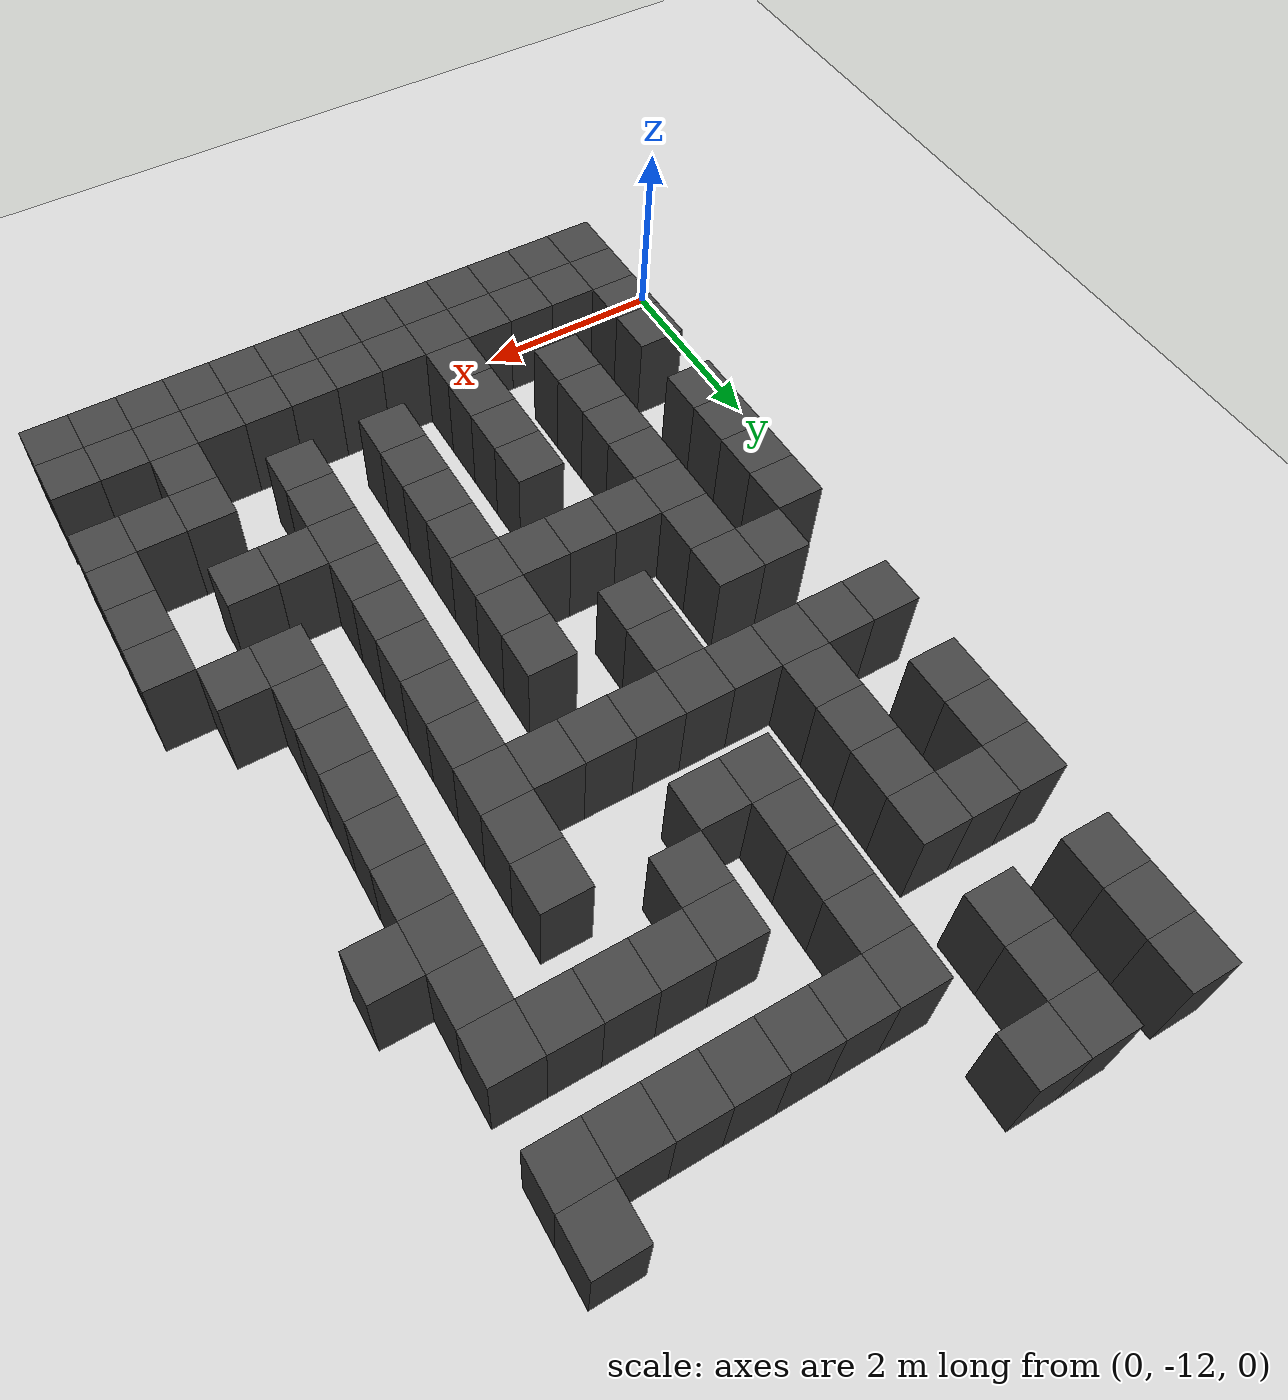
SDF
<sdf version="1.7">
 <world name="map_17663">
  <model name="ground_plane">
   <static>true</static>
   <link name="link">
    <collision name="collision">
     <geometry><plane><normal>0 0 1</normal><size>200 200</size></plane></geometry>
    </collision>
    <visual name="visual">
     <geometry><plane><normal>0 0 1</normal><size>200 200</size></plane></geometry>
     <material><ambient>0.8 0.8 0.8 1</ambient><diffuse>0.8 0.8 0.8 1</diffuse></material>
    </visual>
   </link>
  </model>
  <model name="maze_environment">
   <static>true</static>
   <link name="wall_758">
    <pose>0.750 -2.750 0.500 0 0 0</pose>
    <collision name="col"><geometry><box><size>0.5 0.5 1.0</size></box></geometry></collision>
    <visual name="vis">
     <geometry><box><size>0.5 0.5 1.0</size></box></geometry>
     <material><ambient>0.15 0.15 0.15 1</ambient><diffuse>0.25 0.25 0.25 1</diffuse></material>
    </visual>
   </link>
   <link name="wall_759">
    <pose>1.750 -2.750 0.500 0 0 0</pose>
    <collision name="col"><geometry><box><size>0.5 0.5 1.0</size></box></geometry></collision>
    <visual name="vis">
     <geometry><box><size>0.5 0.5 1.0</size></box></geometry>
     <material><ambient>0.15 0.15 0.15 1</ambient><diffuse>0.25 0.25 0.25 1</diffuse></material>
    </visual>
   </link>
   <link name="wall_760">
    <pose>2.250 -2.750 0.500 0 0 0</pose>
    <collision name="col"><geometry><box><size>0.5 0.5 1.0</size></box></geometry></collision>
    <visual name="vis">
     <geometry><box><size>0.5 0.5 1.0</size></box></geometry>
     <material><ambient>0.15 0.15 0.15 1</ambient><diffuse>0.25 0.25 0.25 1</diffuse></material>
    </visual>
   </link>
   <link name="wall_783">
    <pose>0.750 -3.250 0.500 0 0 0</pose>
    <collision name="col"><geometry><box><size>0.5 0.5 1.0</size></box></geometry></collision>
    <visual name="vis">
     <geometry><box><size>0.5 0.5 1.0</size></box></geometry>
     <material><ambient>0.15 0.15 0.15 1</ambient><diffuse>0.25 0.25 0.25 1</diffuse></material>
    </visual>
   </link>
   <link name="wall_784">
    <pose>1.750 -3.250 0.500 0 0 0</pose>
    <collision name="col"><geometry><box><size>0.5 0.5 1.0</size></box></geometry></collision>
    <visual name="vis">
     <geometry><box><size>0.5 0.5 1.0</size></box></geometry>
     <material><ambient>0.15 0.15 0.15 1</ambient><diffuse>0.25 0.25 0.25 1</diffuse></material>
    </visual>
   </link>
   <link name="wall_785">
    <pose>5.750 -3.250 0.500 0 0 0</pose>
    <collision name="col"><geometry><box><size>0.5 0.5 1.0</size></box></geometry></collision>
    <visual name="vis">
     <geometry><box><size>0.5 0.5 1.0</size></box></geometry>
     <material><ambient>0.15 0.15 0.15 1</ambient><diffuse>0.25 0.25 0.25 1</diffuse></material>
    </visual>
   </link>
   <link name="wall_807">
    <pose>0.750 -3.750 0.500 0 0 0</pose>
    <collision name="col"><geometry><box><size>0.5 0.5 1.0</size></box></geometry></collision>
    <visual name="vis">
     <geometry><box><size>0.5 0.5 1.0</size></box></geometry>
     <material><ambient>0.15 0.15 0.15 1</ambient><diffuse>0.25 0.25 0.25 1</diffuse></material>
    </visual>
   </link>
   <link name="wall_808">
    <pose>1.750 -3.750 0.500 0 0 0</pose>
    <collision name="col"><geometry><box><size>0.5 0.5 1.0</size></box></geometry></collision>
    <visual name="vis">
     <geometry><box><size>0.5 0.5 1.0</size></box></geometry>
     <material><ambient>0.15 0.15 0.15 1</ambient><diffuse>0.25 0.25 0.25 1</diffuse></material>
    </visual>
   </link>
   <link name="wall_809">
    <pose>2.750 -3.750 0.500 0 0 0</pose>
    <collision name="col"><geometry><box><size>0.5 0.5 1.0</size></box></geometry></collision>
    <visual name="vis">
     <geometry><box><size>0.5 0.5 1.0</size></box></geometry>
     <material><ambient>0.15 0.15 0.15 1</ambient><diffuse>0.25 0.25 0.25 1</diffuse></material>
    </visual>
   </link>
   <link name="wall_810">
    <pose>3.250 -3.750 0.500 0 0 0</pose>
    <collision name="col"><geometry><box><size>0.5 0.5 1.0</size></box></geometry></collision>
    <visual name="vis">
     <geometry><box><size>0.5 0.5 1.0</size></box></geometry>
     <material><ambient>0.15 0.15 0.15 1</ambient><diffuse>0.25 0.25 0.25 1</diffuse></material>
    </visual>
   </link>
   <link name="wall_811">
    <pose>3.750 -3.750 0.500 0 0 0</pose>
    <collision name="col"><geometry><box><size>0.5 0.5 1.0</size></box></geometry></collision>
    <visual name="vis">
     <geometry><box><size>0.5 0.5 1.0</size></box></geometry>
     <material><ambient>0.15 0.15 0.15 1</ambient><diffuse>0.25 0.25 0.25 1</diffuse></material>
    </visual>
   </link>
   <link name="wall_812">
    <pose>4.250 -3.750 0.500 0 0 0</pose>
    <collision name="col"><geometry><box><size>0.5 0.5 1.0</size></box></geometry></collision>
    <visual name="vis">
     <geometry><box><size>0.5 0.5 1.0</size></box></geometry>
     <material><ambient>0.15 0.15 0.15 1</ambient><diffuse>0.25 0.25 0.25 1</diffuse></material>
    </visual>
   </link>
   <link name="wall_813">
    <pose>4.750 -3.750 0.500 0 0 0</pose>
    <collision name="col"><geometry><box><size>0.5 0.5 1.0</size></box></geometry></collision>
    <visual name="vis">
     <geometry><box><size>0.5 0.5 1.0</size></box></geometry>
     <material><ambient>0.15 0.15 0.15 1</ambient><diffuse>0.25 0.25 0.25 1</diffuse></material>
    </visual>
   </link>
   <link name="wall_814">
    <pose>5.250 -3.750 0.500 0 0 0</pose>
    <collision name="col"><geometry><box><size>0.5 0.5 1.0</size></box></geometry></collision>
    <visual name="vis">
     <geometry><box><size>0.5 0.5 1.0</size></box></geometry>
     <material><ambient>0.15 0.15 0.15 1</ambient><diffuse>0.25 0.25 0.25 1</diffuse></material>
    </visual>
   </link>
   <link name="wall_815">
    <pose>5.750 -3.750 0.500 0 0 0</pose>
    <collision name="col"><geometry><box><size>0.5 0.5 1.0</size></box></geometry></collision>
    <visual name="vis">
     <geometry><box><size>0.5 0.5 1.0</size></box></geometry>
     <material><ambient>0.15 0.15 0.15 1</ambient><diffuse>0.25 0.25 0.25 1</diffuse></material>
    </visual>
   </link>
   <link name="wall_833">
    <pose>2.750 -4.250 0.500 0 0 0</pose>
    <collision name="col"><geometry><box><size>0.5 0.5 1.0</size></box></geometry></collision>
    <visual name="vis">
     <geometry><box><size>0.5 0.5 1.0</size></box></geometry>
     <material><ambient>0.15 0.15 0.15 1</ambient><diffuse>0.25 0.25 0.25 1</diffuse></material>
    </visual>
   </link>
   <link name="wall_855">
    <pose>0.750 -4.750 0.500 0 0 0</pose>
    <collision name="col"><geometry><box><size>0.5 0.5 1.0</size></box></geometry></collision>
    <visual name="vis">
     <geometry><box><size>0.5 0.5 1.0</size></box></geometry>
     <material><ambient>0.15 0.15 0.15 1</ambient><diffuse>0.25 0.25 0.25 1</diffuse></material>
    </visual>
   </link>
   <link name="wall_856">
    <pose>1.250 -4.750 0.500 0 0 0</pose>
    <collision name="col"><geometry><box><size>0.5 0.5 1.0</size></box></geometry></collision>
    <visual name="vis">
     <geometry><box><size>0.5 0.5 1.0</size></box></geometry>
     <material><ambient>0.15 0.15 0.15 1</ambient><diffuse>0.25 0.25 0.25 1</diffuse></material>
    </visual>
   </link>
   <link name="wall_857">
    <pose>1.750 -4.750 0.500 0 0 0</pose>
    <collision name="col"><geometry><box><size>0.5 0.5 1.0</size></box></geometry></collision>
    <visual name="vis">
     <geometry><box><size>0.5 0.5 1.0</size></box></geometry>
     <material><ambient>0.15 0.15 0.15 1</ambient><diffuse>0.25 0.25 0.25 1</diffuse></material>
    </visual>
   </link>
   <link name="wall_858">
    <pose>2.750 -4.750 0.500 0 0 0</pose>
    <collision name="col"><geometry><box><size>0.5 0.5 1.0</size></box></geometry></collision>
    <visual name="vis">
     <geometry><box><size>0.5 0.5 1.0</size></box></geometry>
     <material><ambient>0.15 0.15 0.15 1</ambient><diffuse>0.25 0.25 0.25 1</diffuse></material>
    </visual>
   </link>
   <link name="wall_859">
    <pose>3.750 -4.750 0.500 0 0 0</pose>
    <collision name="col"><geometry><box><size>0.5 0.5 1.0</size></box></geometry></collision>
    <visual name="vis">
     <geometry><box><size>0.5 0.5 1.0</size></box></geometry>
     <material><ambient>0.15 0.15 0.15 1</ambient><diffuse>0.25 0.25 0.25 1</diffuse></material>
    </visual>
   </link>
   <link name="wall_860">
    <pose>4.250 -4.750 0.500 0 0 0</pose>
    <collision name="col"><geometry><box><size>0.5 0.5 1.0</size></box></geometry></collision>
    <visual name="vis">
     <geometry><box><size>0.5 0.5 1.0</size></box></geometry>
     <material><ambient>0.15 0.15 0.15 1</ambient><diffuse>0.25 0.25 0.25 1</diffuse></material>
    </visual>
   </link>
   <link name="wall_861">
    <pose>4.750 -4.750 0.500 0 0 0</pose>
    <collision name="col"><geometry><box><size>0.5 0.5 1.0</size></box></geometry></collision>
    <visual name="vis">
     <geometry><box><size>0.5 0.5 1.0</size></box></geometry>
     <material><ambient>0.15 0.15 0.15 1</ambient><diffuse>0.25 0.25 0.25 1</diffuse></material>
    </visual>
   </link>
   <link name="wall_862">
    <pose>5.250 -4.750 0.500 0 0 0</pose>
    <collision name="col"><geometry><box><size>0.5 0.5 1.0</size></box></geometry></collision>
    <visual name="vis">
     <geometry><box><size>0.5 0.5 1.0</size></box></geometry>
     <material><ambient>0.15 0.15 0.15 1</ambient><diffuse>0.25 0.25 0.25 1</diffuse></material>
    </visual>
   </link>
   <link name="wall_863">
    <pose>5.750 -4.750 0.500 0 0 0</pose>
    <collision name="col"><geometry><box><size>0.5 0.5 1.0</size></box></geometry></collision>
    <visual name="vis">
     <geometry><box><size>0.5 0.5 1.0</size></box></geometry>
     <material><ambient>0.15 0.15 0.15 1</ambient><diffuse>0.25 0.25 0.25 1</diffuse></material>
    </visual>
   </link>
   <link name="wall_881">
    <pose>0.750 -5.250 0.500 0 0 0</pose>
    <collision name="col"><geometry><box><size>0.5 0.5 1.0</size></box></geometry></collision>
    <visual name="vis">
     <geometry><box><size>0.5 0.5 1.0</size></box></geometry>
     <material><ambient>0.15 0.15 0.15 1</ambient><diffuse>0.25 0.25 0.25 1</diffuse></material>
    </visual>
   </link>
   <link name="wall_882">
    <pose>1.750 -5.250 0.500 0 0 0</pose>
    <collision name="col"><geometry><box><size>0.5 0.5 1.0</size></box></geometry></collision>
    <visual name="vis">
     <geometry><box><size>0.5 0.5 1.0</size></box></geometry>
     <material><ambient>0.15 0.15 0.15 1</ambient><diffuse>0.25 0.25 0.25 1</diffuse></material>
    </visual>
   </link>
   <link name="wall_883">
    <pose>2.750 -5.250 0.500 0 0 0</pose>
    <collision name="col"><geometry><box><size>0.5 0.5 1.0</size></box></geometry></collision>
    <visual name="vis">
     <geometry><box><size>0.5 0.5 1.0</size></box></geometry>
     <material><ambient>0.15 0.15 0.15 1</ambient><diffuse>0.25 0.25 0.25 1</diffuse></material>
    </visual>
   </link>
   <link name="wall_884">
    <pose>3.750 -5.250 0.500 0 0 0</pose>
    <collision name="col"><geometry><box><size>0.5 0.5 1.0</size></box></geometry></collision>
    <visual name="vis">
     <geometry><box><size>0.5 0.5 1.0</size></box></geometry>
     <material><ambient>0.15 0.15 0.15 1</ambient><diffuse>0.25 0.25 0.25 1</diffuse></material>
    </visual>
   </link>
   <link name="wall_885">
    <pose>5.750 -5.250 0.500 0 0 0</pose>
    <collision name="col"><geometry><box><size>0.5 0.5 1.0</size></box></geometry></collision>
    <visual name="vis">
     <geometry><box><size>0.5 0.5 1.0</size></box></geometry>
     <material><ambient>0.15 0.15 0.15 1</ambient><diffuse>0.25 0.25 0.25 1</diffuse></material>
    </visual>
   </link>
   <link name="wall_903">
    <pose>0.750 -5.750 0.500 0 0 0</pose>
    <collision name="col"><geometry><box><size>0.5 0.5 1.0</size></box></geometry></collision>
    <visual name="vis">
     <geometry><box><size>0.5 0.5 1.0</size></box></geometry>
     <material><ambient>0.15 0.15 0.15 1</ambient><diffuse>0.25 0.25 0.25 1</diffuse></material>
    </visual>
   </link>
   <link name="wall_904">
    <pose>1.750 -5.750 0.500 0 0 0</pose>
    <collision name="col"><geometry><box><size>0.5 0.5 1.0</size></box></geometry></collision>
    <visual name="vis">
     <geometry><box><size>0.5 0.5 1.0</size></box></geometry>
     <material><ambient>0.15 0.15 0.15 1</ambient><diffuse>0.25 0.25 0.25 1</diffuse></material>
    </visual>
   </link>
   <link name="wall_905">
    <pose>2.750 -5.750 0.500 0 0 0</pose>
    <collision name="col"><geometry><box><size>0.5 0.5 1.0</size></box></geometry></collision>
    <visual name="vis">
     <geometry><box><size>0.5 0.5 1.0</size></box></geometry>
     <material><ambient>0.15 0.15 0.15 1</ambient><diffuse>0.25 0.25 0.25 1</diffuse></material>
    </visual>
   </link>
   <link name="wall_906">
    <pose>3.250 -5.750 0.500 0 0 0</pose>
    <collision name="col"><geometry><box><size>0.5 0.5 1.0</size></box></geometry></collision>
    <visual name="vis">
     <geometry><box><size>0.5 0.5 1.0</size></box></geometry>
     <material><ambient>0.15 0.15 0.15 1</ambient><diffuse>0.25 0.25 0.25 1</diffuse></material>
    </visual>
   </link>
   <link name="wall_907">
    <pose>4.750 -5.750 0.500 0 0 0</pose>
    <collision name="col"><geometry><box><size>0.5 0.5 1.0</size></box></geometry></collision>
    <visual name="vis">
     <geometry><box><size>0.5 0.5 1.0</size></box></geometry>
     <material><ambient>0.15 0.15 0.15 1</ambient><diffuse>0.25 0.25 0.25 1</diffuse></material>
    </visual>
   </link>
   <link name="wall_908">
    <pose>5.750 -5.750 0.500 0 0 0</pose>
    <collision name="col"><geometry><box><size>0.5 0.5 1.0</size></box></geometry></collision>
    <visual name="vis">
     <geometry><box><size>0.5 0.5 1.0</size></box></geometry>
     <material><ambient>0.15 0.15 0.15 1</ambient><diffuse>0.25 0.25 0.25 1</diffuse></material>
    </visual>
   </link>
   <link name="wall_909">
    <pose>6.250 -5.750 0.500 0 0 0</pose>
    <collision name="col"><geometry><box><size>0.5 0.5 1.0</size></box></geometry></collision>
    <visual name="vis">
     <geometry><box><size>0.5 0.5 1.0</size></box></geometry>
     <material><ambient>0.15 0.15 0.15 1</ambient><diffuse>0.25 0.25 0.25 1</diffuse></material>
    </visual>
   </link>
   <link name="wall_928">
    <pose>1.750 -6.250 0.500 0 0 0</pose>
    <collision name="col"><geometry><box><size>0.5 0.5 1.0</size></box></geometry></collision>
    <visual name="vis">
     <geometry><box><size>0.5 0.5 1.0</size></box></geometry>
     <material><ambient>0.15 0.15 0.15 1</ambient><diffuse>0.25 0.25 0.25 1</diffuse></material>
    </visual>
   </link>
   <link name="wall_929">
    <pose>4.750 -6.250 0.500 0 0 0</pose>
    <collision name="col"><geometry><box><size>0.5 0.5 1.0</size></box></geometry></collision>
    <visual name="vis">
     <geometry><box><size>0.5 0.5 1.0</size></box></geometry>
     <material><ambient>0.15 0.15 0.15 1</ambient><diffuse>0.25 0.25 0.25 1</diffuse></material>
    </visual>
   </link>
   <link name="wall_930">
    <pose>5.750 -6.250 0.500 0 0 0</pose>
    <collision name="col"><geometry><box><size>0.5 0.5 1.0</size></box></geometry></collision>
    <visual name="vis">
     <geometry><box><size>0.5 0.5 1.0</size></box></geometry>
     <material><ambient>0.15 0.15 0.15 1</ambient><diffuse>0.25 0.25 0.25 1</diffuse></material>
    </visual>
   </link>
   <link name="wall_954">
    <pose>0.750 -6.750 0.500 0 0 0</pose>
    <collision name="col"><geometry><box><size>0.5 0.5 1.0</size></box></geometry></collision>
    <visual name="vis">
     <geometry><box><size>0.5 0.5 1.0</size></box></geometry>
     <material><ambient>0.15 0.15 0.15 1</ambient><diffuse>0.25 0.25 0.25 1</diffuse></material>
    </visual>
   </link>
   <link name="wall_955">
    <pose>1.250 -6.750 0.500 0 0 0</pose>
    <collision name="col"><geometry><box><size>0.5 0.5 1.0</size></box></geometry></collision>
    <visual name="vis">
     <geometry><box><size>0.5 0.5 1.0</size></box></geometry>
     <material><ambient>0.15 0.15 0.15 1</ambient><diffuse>0.25 0.25 0.25 1</diffuse></material>
    </visual>
   </link>
   <link name="wall_956">
    <pose>1.750 -6.750 0.500 0 0 0</pose>
    <collision name="col"><geometry><box><size>0.5 0.5 1.0</size></box></geometry></collision>
    <visual name="vis">
     <geometry><box><size>0.5 0.5 1.0</size></box></geometry>
     <material><ambient>0.15 0.15 0.15 1</ambient><diffuse>0.25 0.25 0.25 1</diffuse></material>
    </visual>
   </link>
   <link name="wall_957">
    <pose>2.250 -6.750 0.500 0 0 0</pose>
    <collision name="col"><geometry><box><size>0.5 0.5 1.0</size></box></geometry></collision>
    <visual name="vis">
     <geometry><box><size>0.5 0.5 1.0</size></box></geometry>
     <material><ambient>0.15 0.15 0.15 1</ambient><diffuse>0.25 0.25 0.25 1</diffuse></material>
    </visual>
   </link>
   <link name="wall_958">
    <pose>2.750 -6.750 0.500 0 0 0</pose>
    <collision name="col"><geometry><box><size>0.5 0.5 1.0</size></box></geometry></collision>
    <visual name="vis">
     <geometry><box><size>0.5 0.5 1.0</size></box></geometry>
     <material><ambient>0.15 0.15 0.15 1</ambient><diffuse>0.25 0.25 0.25 1</diffuse></material>
    </visual>
   </link>
   <link name="wall_959">
    <pose>3.250 -6.750 0.500 0 0 0</pose>
    <collision name="col"><geometry><box><size>0.5 0.5 1.0</size></box></geometry></collision>
    <visual name="vis">
     <geometry><box><size>0.5 0.5 1.0</size></box></geometry>
     <material><ambient>0.15 0.15 0.15 1</ambient><diffuse>0.25 0.25 0.25 1</diffuse></material>
    </visual>
   </link>
   <link name="wall_960">
    <pose>3.750 -6.750 0.500 0 0 0</pose>
    <collision name="col"><geometry><box><size>0.5 0.5 1.0</size></box></geometry></collision>
    <visual name="vis">
     <geometry><box><size>0.5 0.5 1.0</size></box></geometry>
     <material><ambient>0.15 0.15 0.15 1</ambient><diffuse>0.25 0.25 0.25 1</diffuse></material>
    </visual>
   </link>
   <link name="wall_961">
    <pose>4.250 -6.750 0.500 0 0 0</pose>
    <collision name="col"><geometry><box><size>0.5 0.5 1.0</size></box></geometry></collision>
    <visual name="vis">
     <geometry><box><size>0.5 0.5 1.0</size></box></geometry>
     <material><ambient>0.15 0.15 0.15 1</ambient><diffuse>0.25 0.25 0.25 1</diffuse></material>
    </visual>
   </link>
   <link name="wall_962">
    <pose>4.750 -6.750 0.500 0 0 0</pose>
    <collision name="col"><geometry><box><size>0.5 0.5 1.0</size></box></geometry></collision>
    <visual name="vis">
     <geometry><box><size>0.5 0.5 1.0</size></box></geometry>
     <material><ambient>0.15 0.15 0.15 1</ambient><diffuse>0.25 0.25 0.25 1</diffuse></material>
    </visual>
   </link>
   <link name="wall_963">
    <pose>5.750 -6.750 0.500 0 0 0</pose>
    <collision name="col"><geometry><box><size>0.5 0.5 1.0</size></box></geometry></collision>
    <visual name="vis">
     <geometry><box><size>0.5 0.5 1.0</size></box></geometry>
     <material><ambient>0.15 0.15 0.15 1</ambient><diffuse>0.25 0.25 0.25 1</diffuse></material>
    </visual>
   </link>
   <link name="wall_980">
    <pose>2.750 -7.250 0.500 0 0 0</pose>
    <collision name="col"><geometry><box><size>0.5 0.5 1.0</size></box></geometry></collision>
    <visual name="vis">
     <geometry><box><size>0.5 0.5 1.0</size></box></geometry>
     <material><ambient>0.15 0.15 0.15 1</ambient><diffuse>0.25 0.25 0.25 1</diffuse></material>
    </visual>
   </link>
   <link name="wall_981">
    <pose>4.750 -7.250 0.500 0 0 0</pose>
    <collision name="col"><geometry><box><size>0.5 0.5 1.0</size></box></geometry></collision>
    <visual name="vis">
     <geometry><box><size>0.5 0.5 1.0</size></box></geometry>
     <material><ambient>0.15 0.15 0.15 1</ambient><diffuse>0.25 0.25 0.25 1</diffuse></material>
    </visual>
   </link>
   <link name="wall_982">
    <pose>5.750 -7.250 0.500 0 0 0</pose>
    <collision name="col"><geometry><box><size>0.5 0.5 1.0</size></box></geometry></collision>
    <visual name="vis">
     <geometry><box><size>0.5 0.5 1.0</size></box></geometry>
     <material><ambient>0.15 0.15 0.15 1</ambient><diffuse>0.25 0.25 0.25 1</diffuse></material>
    </visual>
   </link>
   <link name="wall_1003">
    <pose>1.250 -7.750 0.500 0 0 0</pose>
    <collision name="col"><geometry><box><size>0.5 0.5 1.0</size></box></geometry></collision>
    <visual name="vis">
     <geometry><box><size>0.5 0.5 1.0</size></box></geometry>
     <material><ambient>0.15 0.15 0.15 1</ambient><diffuse>0.25 0.25 0.25 1</diffuse></material>
    </visual>
   </link>
   <link name="wall_1004">
    <pose>1.750 -7.750 0.500 0 0 0</pose>
    <collision name="col"><geometry><box><size>0.5 0.5 1.0</size></box></geometry></collision>
    <visual name="vis">
     <geometry><box><size>0.5 0.5 1.0</size></box></geometry>
     <material><ambient>0.15 0.15 0.15 1</ambient><diffuse>0.25 0.25 0.25 1</diffuse></material>
    </visual>
   </link>
   <link name="wall_1005">
    <pose>2.750 -7.750 0.500 0 0 0</pose>
    <collision name="col"><geometry><box><size>0.5 0.5 1.0</size></box></geometry></collision>
    <visual name="vis">
     <geometry><box><size>0.5 0.5 1.0</size></box></geometry>
     <material><ambient>0.15 0.15 0.15 1</ambient><diffuse>0.25 0.25 0.25 1</diffuse></material>
    </visual>
   </link>
   <link name="wall_1006">
    <pose>3.750 -7.750 0.500 0 0 0</pose>
    <collision name="col"><geometry><box><size>0.5 0.5 1.0</size></box></geometry></collision>
    <visual name="vis">
     <geometry><box><size>0.5 0.5 1.0</size></box></geometry>
     <material><ambient>0.15 0.15 0.15 1</ambient><diffuse>0.25 0.25 0.25 1</diffuse></material>
    </visual>
   </link>
   <link name="wall_1007">
    <pose>4.750 -7.750 0.500 0 0 0</pose>
    <collision name="col"><geometry><box><size>0.5 0.5 1.0</size></box></geometry></collision>
    <visual name="vis">
     <geometry><box><size>0.5 0.5 1.0</size></box></geometry>
     <material><ambient>0.15 0.15 0.15 1</ambient><diffuse>0.25 0.25 0.25 1</diffuse></material>
    </visual>
   </link>
   <link name="wall_1008">
    <pose>5.750 -7.750 0.500 0 0 0</pose>
    <collision name="col"><geometry><box><size>0.5 0.5 1.0</size></box></geometry></collision>
    <visual name="vis">
     <geometry><box><size>0.5 0.5 1.0</size></box></geometry>
     <material><ambient>0.15 0.15 0.15 1</ambient><diffuse>0.25 0.25 0.25 1</diffuse></material>
    </visual>
   </link>
   <link name="wall_1026">
    <pose>0.750 -8.250 0.500 0 0 0</pose>
    <collision name="col"><geometry><box><size>0.5 0.5 1.0</size></box></geometry></collision>
    <visual name="vis">
     <geometry><box><size>0.5 0.5 1.0</size></box></geometry>
     <material><ambient>0.15 0.15 0.15 1</ambient><diffuse>0.25 0.25 0.25 1</diffuse></material>
    </visual>
   </link>
   <link name="wall_1027">
    <pose>1.750 -8.250 0.500 0 0 0</pose>
    <collision name="col"><geometry><box><size>0.5 0.5 1.0</size></box></geometry></collision>
    <visual name="vis">
     <geometry><box><size>0.5 0.5 1.0</size></box></geometry>
     <material><ambient>0.15 0.15 0.15 1</ambient><diffuse>0.25 0.25 0.25 1</diffuse></material>
    </visual>
   </link>
   <link name="wall_1028">
    <pose>3.750 -8.250 0.500 0 0 0</pose>
    <collision name="col"><geometry><box><size>0.5 0.5 1.0</size></box></geometry></collision>
    <visual name="vis">
     <geometry><box><size>0.5 0.5 1.0</size></box></geometry>
     <material><ambient>0.15 0.15 0.15 1</ambient><diffuse>0.25 0.25 0.25 1</diffuse></material>
    </visual>
   </link>
   <link name="wall_1029">
    <pose>4.750 -8.250 0.500 0 0 0</pose>
    <collision name="col"><geometry><box><size>0.5 0.5 1.0</size></box></geometry></collision>
    <visual name="vis">
     <geometry><box><size>0.5 0.5 1.0</size></box></geometry>
     <material><ambient>0.15 0.15 0.15 1</ambient><diffuse>0.25 0.25 0.25 1</diffuse></material>
    </visual>
   </link>
   <link name="wall_1030">
    <pose>5.750 -8.250 0.500 0 0 0</pose>
    <collision name="col"><geometry><box><size>0.5 0.5 1.0</size></box></geometry></collision>
    <visual name="vis">
     <geometry><box><size>0.5 0.5 1.0</size></box></geometry>
     <material><ambient>0.15 0.15 0.15 1</ambient><diffuse>0.25 0.25 0.25 1</diffuse></material>
    </visual>
   </link>
   <link name="wall_1052">
    <pose>0.750 -8.750 0.500 0 0 0</pose>
    <collision name="col"><geometry><box><size>0.5 0.5 1.0</size></box></geometry></collision>
    <visual name="vis">
     <geometry><box><size>0.5 0.5 1.0</size></box></geometry>
     <material><ambient>0.15 0.15 0.15 1</ambient><diffuse>0.25 0.25 0.25 1</diffuse></material>
    </visual>
   </link>
   <link name="wall_1053">
    <pose>1.750 -8.750 0.500 0 0 0</pose>
    <collision name="col"><geometry><box><size>0.5 0.5 1.0</size></box></geometry></collision>
    <visual name="vis">
     <geometry><box><size>0.5 0.5 1.0</size></box></geometry>
     <material><ambient>0.15 0.15 0.15 1</ambient><diffuse>0.25 0.25 0.25 1</diffuse></material>
    </visual>
   </link>
   <link name="wall_1054">
    <pose>2.250 -8.750 0.500 0 0 0</pose>
    <collision name="col"><geometry><box><size>0.5 0.5 1.0</size></box></geometry></collision>
    <visual name="vis">
     <geometry><box><size>0.5 0.5 1.0</size></box></geometry>
     <material><ambient>0.15 0.15 0.15 1</ambient><diffuse>0.25 0.25 0.25 1</diffuse></material>
    </visual>
   </link>
   <link name="wall_1055">
    <pose>2.750 -8.750 0.500 0 0 0</pose>
    <collision name="col"><geometry><box><size>0.5 0.5 1.0</size></box></geometry></collision>
    <visual name="vis">
     <geometry><box><size>0.5 0.5 1.0</size></box></geometry>
     <material><ambient>0.15 0.15 0.15 1</ambient><diffuse>0.25 0.25 0.25 1</diffuse></material>
    </visual>
   </link>
   <link name="wall_1056">
    <pose>3.250 -8.750 0.500 0 0 0</pose>
    <collision name="col"><geometry><box><size>0.5 0.5 1.0</size></box></geometry></collision>
    <visual name="vis">
     <geometry><box><size>0.5 0.5 1.0</size></box></geometry>
     <material><ambient>0.15 0.15 0.15 1</ambient><diffuse>0.25 0.25 0.25 1</diffuse></material>
    </visual>
   </link>
   <link name="wall_1057">
    <pose>3.750 -8.750 0.500 0 0 0</pose>
    <collision name="col"><geometry><box><size>0.5 0.5 1.0</size></box></geometry></collision>
    <visual name="vis">
     <geometry><box><size>0.5 0.5 1.0</size></box></geometry>
     <material><ambient>0.15 0.15 0.15 1</ambient><diffuse>0.25 0.25 0.25 1</diffuse></material>
    </visual>
   </link>
   <link name="wall_1058">
    <pose>4.750 -8.750 0.500 0 0 0</pose>
    <collision name="col"><geometry><box><size>0.5 0.5 1.0</size></box></geometry></collision>
    <visual name="vis">
     <geometry><box><size>0.5 0.5 1.0</size></box></geometry>
     <material><ambient>0.15 0.15 0.15 1</ambient><diffuse>0.25 0.25 0.25 1</diffuse></material>
    </visual>
   </link>
   <link name="wall_1059">
    <pose>5.750 -8.750 0.500 0 0 0</pose>
    <collision name="col"><geometry><box><size>0.5 0.5 1.0</size></box></geometry></collision>
    <visual name="vis">
     <geometry><box><size>0.5 0.5 1.0</size></box></geometry>
     <material><ambient>0.15 0.15 0.15 1</ambient><diffuse>0.25 0.25 0.25 1</diffuse></material>
    </visual>
   </link>
   <link name="wall_1060">
    <pose>6.250 -8.750 0.500 0 0 0</pose>
    <collision name="col"><geometry><box><size>0.5 0.5 1.0</size></box></geometry></collision>
    <visual name="vis">
     <geometry><box><size>0.5 0.5 1.0</size></box></geometry>
     <material><ambient>0.15 0.15 0.15 1</ambient><diffuse>0.25 0.25 0.25 1</diffuse></material>
    </visual>
   </link>
   <link name="wall_1075">
    <pose>0.750 -9.250 0.500 0 0 0</pose>
    <collision name="col"><geometry><box><size>0.5 0.5 1.0</size></box></geometry></collision>
    <visual name="vis">
     <geometry><box><size>0.5 0.5 1.0</size></box></geometry>
     <material><ambient>0.15 0.15 0.15 1</ambient><diffuse>0.25 0.25 0.25 1</diffuse></material>
    </visual>
   </link>
   <link name="wall_1076">
    <pose>1.750 -9.250 0.500 0 0 0</pose>
    <collision name="col"><geometry><box><size>0.5 0.5 1.0</size></box></geometry></collision>
    <visual name="vis">
     <geometry><box><size>0.5 0.5 1.0</size></box></geometry>
     <material><ambient>0.15 0.15 0.15 1</ambient><diffuse>0.25 0.25 0.25 1</diffuse></material>
    </visual>
   </link>
   <link name="wall_1077">
    <pose>3.750 -9.250 0.500 0 0 0</pose>
    <collision name="col"><geometry><box><size>0.5 0.5 1.0</size></box></geometry></collision>
    <visual name="vis">
     <geometry><box><size>0.5 0.5 1.0</size></box></geometry>
     <material><ambient>0.15 0.15 0.15 1</ambient><diffuse>0.25 0.25 0.25 1</diffuse></material>
    </visual>
   </link>
   <link name="wall_1078">
    <pose>4.750 -9.250 0.500 0 0 0</pose>
    <collision name="col"><geometry><box><size>0.5 0.5 1.0</size></box></geometry></collision>
    <visual name="vis">
     <geometry><box><size>0.5 0.5 1.0</size></box></geometry>
     <material><ambient>0.15 0.15 0.15 1</ambient><diffuse>0.25 0.25 0.25 1</diffuse></material>
    </visual>
   </link>
   <link name="wall_1079">
    <pose>6.750 -9.250 0.500 0 0 0</pose>
    <collision name="col"><geometry><box><size>0.5 0.5 1.0</size></box></geometry></collision>
    <visual name="vis">
     <geometry><box><size>0.5 0.5 1.0</size></box></geometry>
     <material><ambient>0.15 0.15 0.15 1</ambient><diffuse>0.25 0.25 0.25 1</diffuse></material>
    </visual>
   </link>
   <link name="wall_1104">
    <pose>0.750 -9.750 0.500 0 0 0</pose>
    <collision name="col"><geometry><box><size>0.5 0.5 1.0</size></box></geometry></collision>
    <visual name="vis">
     <geometry><box><size>0.5 0.5 1.0</size></box></geometry>
     <material><ambient>0.15 0.15 0.15 1</ambient><diffuse>0.25 0.25 0.25 1</diffuse></material>
    </visual>
   </link>
   <link name="wall_1105">
    <pose>1.750 -9.750 0.500 0 0 0</pose>
    <collision name="col"><geometry><box><size>0.5 0.5 1.0</size></box></geometry></collision>
    <visual name="vis">
     <geometry><box><size>0.5 0.5 1.0</size></box></geometry>
     <material><ambient>0.15 0.15 0.15 1</ambient><diffuse>0.25 0.25 0.25 1</diffuse></material>
    </visual>
   </link>
   <link name="wall_1106">
    <pose>2.750 -9.750 0.500 0 0 0</pose>
    <collision name="col"><geometry><box><size>0.5 0.5 1.0</size></box></geometry></collision>
    <visual name="vis">
     <geometry><box><size>0.5 0.5 1.0</size></box></geometry>
     <material><ambient>0.15 0.15 0.15 1</ambient><diffuse>0.25 0.25 0.25 1</diffuse></material>
    </visual>
   </link>
   <link name="wall_1107">
    <pose>3.750 -9.750 0.500 0 0 0</pose>
    <collision name="col"><geometry><box><size>0.5 0.5 1.0</size></box></geometry></collision>
    <visual name="vis">
     <geometry><box><size>0.5 0.5 1.0</size></box></geometry>
     <material><ambient>0.15 0.15 0.15 1</ambient><diffuse>0.25 0.25 0.25 1</diffuse></material>
    </visual>
   </link>
   <link name="wall_1108">
    <pose>4.750 -9.750 0.500 0 0 0</pose>
    <collision name="col"><geometry><box><size>0.5 0.5 1.0</size></box></geometry></collision>
    <visual name="vis">
     <geometry><box><size>0.5 0.5 1.0</size></box></geometry>
     <material><ambient>0.15 0.15 0.15 1</ambient><diffuse>0.25 0.25 0.25 1</diffuse></material>
    </visual>
   </link>
   <link name="wall_1109">
    <pose>5.250 -9.750 0.500 0 0 0</pose>
    <collision name="col"><geometry><box><size>0.5 0.5 1.0</size></box></geometry></collision>
    <visual name="vis">
     <geometry><box><size>0.5 0.5 1.0</size></box></geometry>
     <material><ambient>0.15 0.15 0.15 1</ambient><diffuse>0.25 0.25 0.25 1</diffuse></material>
    </visual>
   </link>
   <link name="wall_1110">
    <pose>5.750 -9.750 0.500 0 0 0</pose>
    <collision name="col"><geometry><box><size>0.5 0.5 1.0</size></box></geometry></collision>
    <visual name="vis">
     <geometry><box><size>0.5 0.5 1.0</size></box></geometry>
     <material><ambient>0.15 0.15 0.15 1</ambient><diffuse>0.25 0.25 0.25 1</diffuse></material>
    </visual>
   </link>
   <link name="wall_1111">
    <pose>6.750 -9.750 0.500 0 0 0</pose>
    <collision name="col"><geometry><box><size>0.5 0.5 1.0</size></box></geometry></collision>
    <visual name="vis">
     <geometry><box><size>0.5 0.5 1.0</size></box></geometry>
     <material><ambient>0.15 0.15 0.15 1</ambient><diffuse>0.25 0.25 0.25 1</diffuse></material>
    </visual>
   </link>
   <link name="wall_1125">
    <pose>1.750 -10.250 0.500 0 0 0</pose>
    <collision name="col"><geometry><box><size>0.5 0.5 1.0</size></box></geometry></collision>
    <visual name="vis">
     <geometry><box><size>0.5 0.5 1.0</size></box></geometry>
     <material><ambient>0.15 0.15 0.15 1</ambient><diffuse>0.25 0.25 0.25 1</diffuse></material>
    </visual>
   </link>
   <link name="wall_1126">
    <pose>2.750 -10.250 0.500 0 0 0</pose>
    <collision name="col"><geometry><box><size>0.5 0.5 1.0</size></box></geometry></collision>
    <visual name="vis">
     <geometry><box><size>0.5 0.5 1.0</size></box></geometry>
     <material><ambient>0.15 0.15 0.15 1</ambient><diffuse>0.25 0.25 0.25 1</diffuse></material>
    </visual>
   </link>
   <link name="wall_1127">
    <pose>3.750 -10.250 0.500 0 0 0</pose>
    <collision name="col"><geometry><box><size>0.5 0.5 1.0</size></box></geometry></collision>
    <visual name="vis">
     <geometry><box><size>0.5 0.5 1.0</size></box></geometry>
     <material><ambient>0.15 0.15 0.15 1</ambient><diffuse>0.25 0.25 0.25 1</diffuse></material>
    </visual>
   </link>
   <link name="wall_1128">
    <pose>4.750 -10.250 0.500 0 0 0</pose>
    <collision name="col"><geometry><box><size>0.5 0.5 1.0</size></box></geometry></collision>
    <visual name="vis">
     <geometry><box><size>0.5 0.5 1.0</size></box></geometry>
     <material><ambient>0.15 0.15 0.15 1</ambient><diffuse>0.25 0.25 0.25 1</diffuse></material>
    </visual>
   </link>
   <link name="wall_1129">
    <pose>6.750 -10.250 0.500 0 0 0</pose>
    <collision name="col"><geometry><box><size>0.5 0.5 1.0</size></box></geometry></collision>
    <visual name="vis">
     <geometry><box><size>0.5 0.5 1.0</size></box></geometry>
     <material><ambient>0.15 0.15 0.15 1</ambient><diffuse>0.25 0.25 0.25 1</diffuse></material>
    </visual>
   </link>
   <link name="wall_1153">
    <pose>0.750 -10.750 0.500 0 0 0</pose>
    <collision name="col"><geometry><box><size>0.5 0.5 1.0</size></box></geometry></collision>
    <visual name="vis">
     <geometry><box><size>0.5 0.5 1.0</size></box></geometry>
     <material><ambient>0.15 0.15 0.15 1</ambient><diffuse>0.25 0.25 0.25 1</diffuse></material>
    </visual>
   </link>
   <link name="wall_1154">
    <pose>1.750 -10.750 0.500 0 0 0</pose>
    <collision name="col"><geometry><box><size>0.5 0.5 1.0</size></box></geometry></collision>
    <visual name="vis">
     <geometry><box><size>0.5 0.5 1.0</size></box></geometry>
     <material><ambient>0.15 0.15 0.15 1</ambient><diffuse>0.25 0.25 0.25 1</diffuse></material>
    </visual>
   </link>
   <link name="wall_1155">
    <pose>2.750 -10.750 0.500 0 0 0</pose>
    <collision name="col"><geometry><box><size>0.5 0.5 1.0</size></box></geometry></collision>
    <visual name="vis">
     <geometry><box><size>0.5 0.5 1.0</size></box></geometry>
     <material><ambient>0.15 0.15 0.15 1</ambient><diffuse>0.25 0.25 0.25 1</diffuse></material>
    </visual>
   </link>
   <link name="wall_1156">
    <pose>3.750 -10.750 0.500 0 0 0</pose>
    <collision name="col"><geometry><box><size>0.5 0.5 1.0</size></box></geometry></collision>
    <visual name="vis">
     <geometry><box><size>0.5 0.5 1.0</size></box></geometry>
     <material><ambient>0.15 0.15 0.15 1</ambient><diffuse>0.25 0.25 0.25 1</diffuse></material>
    </visual>
   </link>
   <link name="wall_1157">
    <pose>4.750 -10.750 0.500 0 0 0</pose>
    <collision name="col"><geometry><box><size>0.5 0.5 1.0</size></box></geometry></collision>
    <visual name="vis">
     <geometry><box><size>0.5 0.5 1.0</size></box></geometry>
     <material><ambient>0.15 0.15 0.15 1</ambient><diffuse>0.25 0.25 0.25 1</diffuse></material>
    </visual>
   </link>
   <link name="wall_1158">
    <pose>5.750 -10.750 0.500 0 0 0</pose>
    <collision name="col"><geometry><box><size>0.5 0.5 1.0</size></box></geometry></collision>
    <visual name="vis">
     <geometry><box><size>0.5 0.5 1.0</size></box></geometry>
     <material><ambient>0.15 0.15 0.15 1</ambient><diffuse>0.25 0.25 0.25 1</diffuse></material>
    </visual>
   </link>
   <link name="wall_1159">
    <pose>6.250 -10.750 0.500 0 0 0</pose>
    <collision name="col"><geometry><box><size>0.5 0.5 1.0</size></box></geometry></collision>
    <visual name="vis">
     <geometry><box><size>0.5 0.5 1.0</size></box></geometry>
     <material><ambient>0.15 0.15 0.15 1</ambient><diffuse>0.25 0.25 0.25 1</diffuse></material>
    </visual>
   </link>
   <link name="wall_1160">
    <pose>6.750 -10.750 0.500 0 0 0</pose>
    <collision name="col"><geometry><box><size>0.5 0.5 1.0</size></box></geometry></collision>
    <visual name="vis">
     <geometry><box><size>0.5 0.5 1.0</size></box></geometry>
     <material><ambient>0.15 0.15 0.15 1</ambient><diffuse>0.25 0.25 0.25 1</diffuse></material>
    </visual>
   </link>
   <link name="wall_1172">
    <pose>0.750 -11.250 0.500 0 0 0</pose>
    <collision name="col"><geometry><box><size>0.5 0.5 1.0</size></box></geometry></collision>
    <visual name="vis">
     <geometry><box><size>0.5 0.5 1.0</size></box></geometry>
     <material><ambient>0.15 0.15 0.15 1</ambient><diffuse>0.25 0.25 0.25 1</diffuse></material>
    </visual>
   </link>
   <link name="wall_1173">
    <pose>2.750 -11.250 0.500 0 0 0</pose>
    <collision name="col"><geometry><box><size>0.5 0.5 1.0</size></box></geometry></collision>
    <visual name="vis">
     <geometry><box><size>0.5 0.5 1.0</size></box></geometry>
     <material><ambient>0.15 0.15 0.15 1</ambient><diffuse>0.25 0.25 0.25 1</diffuse></material>
    </visual>
   </link>
   <link name="wall_1174">
    <pose>5.750 -11.250 0.500 0 0 0</pose>
    <collision name="col"><geometry><box><size>0.5 0.5 1.0</size></box></geometry></collision>
    <visual name="vis">
     <geometry><box><size>0.5 0.5 1.0</size></box></geometry>
     <material><ambient>0.15 0.15 0.15 1</ambient><diffuse>0.25 0.25 0.25 1</diffuse></material>
    </visual>
   </link>
   <link name="wall_1202">
    <pose>0.750 -11.750 0.500 0 0 0</pose>
    <collision name="col"><geometry><box><size>0.5 0.5 1.0</size></box></geometry></collision>
    <visual name="vis">
     <geometry><box><size>0.5 0.5 1.0</size></box></geometry>
     <material><ambient>0.15 0.15 0.15 1</ambient><diffuse>0.25 0.25 0.25 1</diffuse></material>
    </visual>
   </link>
   <link name="wall_1203">
    <pose>1.250 -11.750 0.500 0 0 0</pose>
    <collision name="col"><geometry><box><size>0.5 0.5 1.0</size></box></geometry></collision>
    <visual name="vis">
     <geometry><box><size>0.5 0.5 1.0</size></box></geometry>
     <material><ambient>0.15 0.15 0.15 1</ambient><diffuse>0.25 0.25 0.25 1</diffuse></material>
    </visual>
   </link>
   <link name="wall_1204">
    <pose>1.750 -11.750 0.500 0 0 0</pose>
    <collision name="col"><geometry><box><size>0.5 0.5 1.0</size></box></geometry></collision>
    <visual name="vis">
     <geometry><box><size>0.5 0.5 1.0</size></box></geometry>
     <material><ambient>0.15 0.15 0.15 1</ambient><diffuse>0.25 0.25 0.25 1</diffuse></material>
    </visual>
   </link>
   <link name="wall_1205">
    <pose>2.250 -11.750 0.500 0 0 0</pose>
    <collision name="col"><geometry><box><size>0.5 0.5 1.0</size></box></geometry></collision>
    <visual name="vis">
     <geometry><box><size>0.5 0.5 1.0</size></box></geometry>
     <material><ambient>0.15 0.15 0.15 1</ambient><diffuse>0.25 0.25 0.25 1</diffuse></material>
    </visual>
   </link>
   <link name="wall_1206">
    <pose>2.750 -11.750 0.500 0 0 0</pose>
    <collision name="col"><geometry><box><size>0.5 0.5 1.0</size></box></geometry></collision>
    <visual name="vis">
     <geometry><box><size>0.5 0.5 1.0</size></box></geometry>
     <material><ambient>0.15 0.15 0.15 1</ambient><diffuse>0.25 0.25 0.25 1</diffuse></material>
    </visual>
   </link>
   <link name="wall_1207">
    <pose>3.250 -11.750 0.500 0 0 0</pose>
    <collision name="col"><geometry><box><size>0.5 0.5 1.0</size></box></geometry></collision>
    <visual name="vis">
     <geometry><box><size>0.5 0.5 1.0</size></box></geometry>
     <material><ambient>0.15 0.15 0.15 1</ambient><diffuse>0.25 0.25 0.25 1</diffuse></material>
    </visual>
   </link>
   <link name="wall_1208">
    <pose>3.750 -11.750 0.500 0 0 0</pose>
    <collision name="col"><geometry><box><size>0.5 0.5 1.0</size></box></geometry></collision>
    <visual name="vis">
     <geometry><box><size>0.5 0.5 1.0</size></box></geometry>
     <material><ambient>0.15 0.15 0.15 1</ambient><diffuse>0.25 0.25 0.25 1</diffuse></material>
    </visual>
   </link>
   <link name="wall_1209">
    <pose>4.250 -11.750 0.500 0 0 0</pose>
    <collision name="col"><geometry><box><size>0.5 0.5 1.0</size></box></geometry></collision>
    <visual name="vis">
     <geometry><box><size>0.5 0.5 1.0</size></box></geometry>
     <material><ambient>0.15 0.15 0.15 1</ambient><diffuse>0.25 0.25 0.25 1</diffuse></material>
    </visual>
   </link>
   <link name="wall_1210">
    <pose>4.750 -11.750 0.500 0 0 0</pose>
    <collision name="col"><geometry><box><size>0.5 0.5 1.0</size></box></geometry></collision>
    <visual name="vis">
     <geometry><box><size>0.5 0.5 1.0</size></box></geometry>
     <material><ambient>0.15 0.15 0.15 1</ambient><diffuse>0.25 0.25 0.25 1</diffuse></material>
    </visual>
   </link>
   <link name="wall_1211">
    <pose>5.250 -11.750 0.500 0 0 0</pose>
    <collision name="col"><geometry><box><size>0.5 0.5 1.0</size></box></geometry></collision>
    <visual name="vis">
     <geometry><box><size>0.5 0.5 1.0</size></box></geometry>
     <material><ambient>0.15 0.15 0.15 1</ambient><diffuse>0.25 0.25 0.25 1</diffuse></material>
    </visual>
   </link>
   <link name="wall_1212">
    <pose>5.750 -11.750 0.500 0 0 0</pose>
    <collision name="col"><geometry><box><size>0.5 0.5 1.0</size></box></geometry></collision>
    <visual name="vis">
     <geometry><box><size>0.5 0.5 1.0</size></box></geometry>
     <material><ambient>0.15 0.15 0.15 1</ambient><diffuse>0.25 0.25 0.25 1</diffuse></material>
    </visual>
   </link>
   <link name="wall_1213">
    <pose>6.250 -11.750 0.500 0 0 0</pose>
    <collision name="col"><geometry><box><size>0.5 0.5 1.0</size></box></geometry></collision>
    <visual name="vis">
     <geometry><box><size>0.5 0.5 1.0</size></box></geometry>
     <material><ambient>0.15 0.15 0.15 1</ambient><diffuse>0.25 0.25 0.25 1</diffuse></material>
    </visual>
   </link>
   <link name="wall_1214">
    <pose>6.750 -11.750 0.500 0 0 0</pose>
    <collision name="col"><geometry><box><size>0.5 0.5 1.0</size></box></geometry></collision>
    <visual name="vis">
     <geometry><box><size>0.5 0.5 1.0</size></box></geometry>
     <material><ambient>0.15 0.15 0.15 1</ambient><diffuse>0.25 0.25 0.25 1</diffuse></material>
    </visual>
   </link>
   <link name="wall_1250">
    <pose>0.750 -12.250 0.500 0 0 0</pose>
    <collision name="col"><geometry><box><size>0.5 0.5 1.0</size></box></geometry></collision>
    <visual name="vis">
     <geometry><box><size>0.5 0.5 1.0</size></box></geometry>
     <material><ambient>0.15 0.15 0.15 1</ambient><diffuse>0.25 0.25 0.25 1</diffuse></material>
    </visual>
   </link>
   <link name="wall_1251">
    <pose>1.250 -12.250 0.500 0 0 0</pose>
    <collision name="col"><geometry><box><size>0.5 0.5 1.0</size></box></geometry></collision>
    <visual name="vis">
     <geometry><box><size>0.5 0.5 1.0</size></box></geometry>
     <material><ambient>0.15 0.15 0.15 1</ambient><diffuse>0.25 0.25 0.25 1</diffuse></material>
    </visual>
   </link>
   <link name="wall_1252">
    <pose>1.750 -12.250 0.500 0 0 0</pose>
    <collision name="col"><geometry><box><size>0.5 0.5 1.0</size></box></geometry></collision>
    <visual name="vis">
     <geometry><box><size>0.5 0.5 1.0</size></box></geometry>
     <material><ambient>0.15 0.15 0.15 1</ambient><diffuse>0.25 0.25 0.25 1</diffuse></material>
    </visual>
   </link>
   <link name="wall_1253">
    <pose>2.250 -12.250 0.500 0 0 0</pose>
    <collision name="col"><geometry><box><size>0.5 0.5 1.0</size></box></geometry></collision>
    <visual name="vis">
     <geometry><box><size>0.5 0.5 1.0</size></box></geometry>
     <material><ambient>0.15 0.15 0.15 1</ambient><diffuse>0.25 0.25 0.25 1</diffuse></material>
    </visual>
   </link>
   <link name="wall_1254">
    <pose>2.750 -12.250 0.500 0 0 0</pose>
    <collision name="col"><geometry><box><size>0.5 0.5 1.0</size></box></geometry></collision>
    <visual name="vis">
     <geometry><box><size>0.5 0.5 1.0</size></box></geometry>
     <material><ambient>0.15 0.15 0.15 1</ambient><diffuse>0.25 0.25 0.25 1</diffuse></material>
    </visual>
   </link>
   <link name="wall_1255">
    <pose>3.250 -12.250 0.500 0 0 0</pose>
    <collision name="col"><geometry><box><size>0.5 0.5 1.0</size></box></geometry></collision>
    <visual name="vis">
     <geometry><box><size>0.5 0.5 1.0</size></box></geometry>
     <material><ambient>0.15 0.15 0.15 1</ambient><diffuse>0.25 0.25 0.25 1</diffuse></material>
    </visual>
   </link>
   <link name="wall_1256">
    <pose>3.750 -12.250 0.500 0 0 0</pose>
    <collision name="col"><geometry><box><size>0.5 0.5 1.0</size></box></geometry></collision>
    <visual name="vis">
     <geometry><box><size>0.5 0.5 1.0</size></box></geometry>
     <material><ambient>0.15 0.15 0.15 1</ambient><diffuse>0.25 0.25 0.25 1</diffuse></material>
    </visual>
   </link>
   <link name="wall_1257">
    <pose>4.250 -12.250 0.500 0 0 0</pose>
    <collision name="col"><geometry><box><size>0.5 0.5 1.0</size></box></geometry></collision>
    <visual name="vis">
     <geometry><box><size>0.5 0.5 1.0</size></box></geometry>
     <material><ambient>0.15 0.15 0.15 1</ambient><diffuse>0.25 0.25 0.25 1</diffuse></material>
    </visual>
   </link>
   <link name="wall_1258">
    <pose>4.750 -12.250 0.500 0 0 0</pose>
    <collision name="col"><geometry><box><size>0.5 0.5 1.0</size></box></geometry></collision>
    <visual name="vis">
     <geometry><box><size>0.5 0.5 1.0</size></box></geometry>
     <material><ambient>0.15 0.15 0.15 1</ambient><diffuse>0.25 0.25 0.25 1</diffuse></material>
    </visual>
   </link>
   <link name="wall_1259">
    <pose>5.250 -12.250 0.500 0 0 0</pose>
    <collision name="col"><geometry><box><size>0.5 0.5 1.0</size></box></geometry></collision>
    <visual name="vis">
     <geometry><box><size>0.5 0.5 1.0</size></box></geometry>
     <material><ambient>0.15 0.15 0.15 1</ambient><diffuse>0.25 0.25 0.25 1</diffuse></material>
    </visual>
   </link>
   <link name="wall_1260">
    <pose>5.750 -12.250 0.500 0 0 0</pose>
    <collision name="col"><geometry><box><size>0.5 0.5 1.0</size></box></geometry></collision>
    <visual name="vis">
     <geometry><box><size>0.5 0.5 1.0</size></box></geometry>
     <material><ambient>0.15 0.15 0.15 1</ambient><diffuse>0.25 0.25 0.25 1</diffuse></material>
    </visual>
   </link>
   <link name="wall_1261">
    <pose>6.250 -12.250 0.500 0 0 0</pose>
    <collision name="col"><geometry><box><size>0.5 0.5 1.0</size></box></geometry></collision>
    <visual name="vis">
     <geometry><box><size>0.5 0.5 1.0</size></box></geometry>
     <material><ambient>0.15 0.15 0.15 1</ambient><diffuse>0.25 0.25 0.25 1</diffuse></material>
    </visual>
   </link>
   <link name="wall_1262">
    <pose>6.750 -12.250 0.500 0 0 0</pose>
    <collision name="col"><geometry><box><size>0.5 0.5 1.0</size></box></geometry></collision>
    <visual name="vis">
     <geometry><box><size>0.5 0.5 1.0</size></box></geometry>
     <material><ambient>0.15 0.15 0.15 1</ambient><diffuse>0.25 0.25 0.25 1</diffuse></material>
    </visual>
   </link>
  </model>
 </world>
</sdf>
